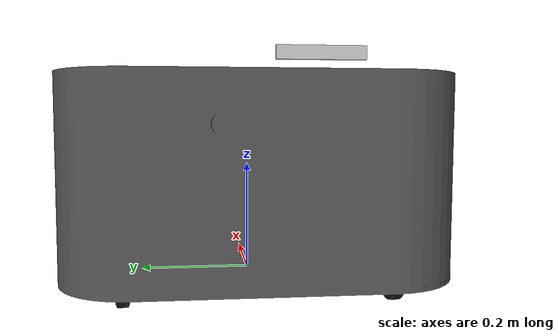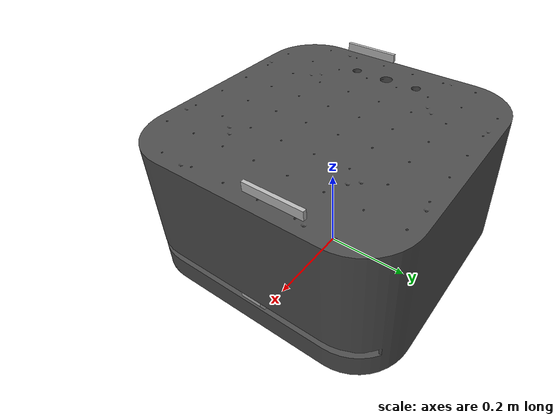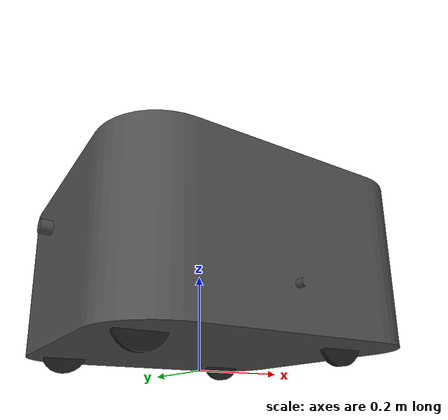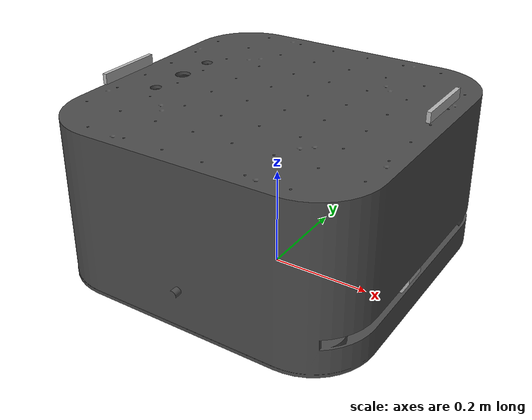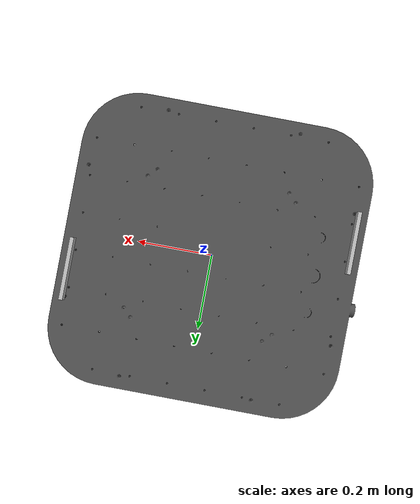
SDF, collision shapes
<?xml version='1.0'?>
<sdf version='1.6'>
  <model name="omniveyor_robot">
    <!-- For debug purpose Only: When configuring the robot structure,
         setting static to true such that the robot is ignored by the physics engine.
      -->

    <!-- Robot base_link -->
    <link name='base_link'>
      <pose>0 0 0 0 0 0</pose>
      <inertial>
        <pose>0 0 0.192 0 0 0</pose>
        <mass>29.82</mass>
        <inertia>
            <ixx>1.209698</ixx>
            <ixy>0</ixy>
            <ixz>0</ixz>
            <iyy>1.209698</iyy>
            <iyz>0</iyz>
            <izz>1.910468</izz>
        </inertia>
      </inertial>
      <collision name='collision'>
        <geometry>
          <mesh>
            <uri>OV_Shell.STL</uri>
            <scale>0.001 0.001 0.001</scale>
          </mesh>
        </geometry>
        <pose>-0.3752 0.3381 0.032 1.5708 -0 0</pose>
      </collision>
      <visual name='visual_mesh'>
        <geometry>
          <mesh>
            <uri>OV_Shell.STL</uri>
            <scale>0.001 0.001 0.001</scale>
          </mesh>
        </geometry>
        <pose>-0.3752 0.3381 0.032 1.5708 -0 0</pose>
        <material>
          <ambient>0.1 0.1 0.1 1</ambient>
          <diffuse>0.3 0.3 0.3 1</diffuse>
          <specular>0 0 0 0</specular>
          <emissive>0 0 0 1</emissive>
        </material>
      </visual>
    </link>

    <!-- Powered Casters -->
    <link name="FL_wheel">
      <pose>0.1874 0.2074 0.05 0 1.5707 1.5707</pose>
      <collision name="collision">
        <geometry>
          <cylinder>
            <radius>0.05</radius>
            <length>0.015</length>
          </cylinder>
        </geometry>
        <surface>
          <friction>
            <ode>
              <mu>0.9</mu>
              <mu2>0.9</mu2>
              <slip1>0.0001</slip1>
              <slip2>0.0001</slip2>
            </ode>
          </friction>
        </surface>
      </collision>
      <visual name="visual">
        <geometry>
          <cylinder>
            <radius>0.05</radius>
            <length>0.015</length>
          </cylinder>
        </geometry>
        <material>
          <ambient>0.1 0.1 0.1 1</ambient>
          <diffuse>0.1 0.1 0.1 1</diffuse>
          <specular>0 0 0 0</specular>
          <emissive>0 0 0 1</emissive>
        </material>
      </visual>
    </link>
    <link name="FL_poweredCaster">
      <pose>0.2074 0.2074 0.15 0 0 0</pose>
      <inertial>
        <mass>7.92</mass>
        <inertia>
            <ixx>0.0332</ixx>
            <ixy>0</ixy>
            <ixz>0</ixz>
            <iyy>0.0332</iyy>
            <iyz>0</iyz>
            <izz>0.02532</izz>
        </inertia>
      </inertial>
      <collision name="collision_p">
        <geometry>
          <cylinder>
            <radius>0.025</radius>
            <length>0.22</length>
          </cylinder>
        </geometry>
      </collision>
      <collision name="collision_f">
        <pose>-0.01 0 -0.1 0 1.5707 0</pose>
        <geometry>
          <cylinder>
            <radius>0.01</radius>
            <length>0.02</length>
          </cylinder>
        </geometry>
      </collision>
      <visual name="visual_p">
        <geometry>
          <cylinder>
            <radius>0.025</radius>
            <length>0.22</length>
          </cylinder>
        </geometry>
      </visual>
      <visual name="visual_f">
        <pose>-0.01 0 -0.1 0 1.5707 0</pose>
        <geometry>
          <cylinder>
            <radius>0.01</radius>
            <length>0.02</length>
          </cylinder>
        </geometry>
      </visual>
    </link>

    <link name="FR_wheel">
      <pose>0.1874 -0.2074 0.05 0 1.5707 1.5707</pose>
      <collision name="collision">
        <geometry>
          <cylinder>
            <radius>0.05</radius>
            <length>0.015</length>
          </cylinder>
        </geometry>
        <surface>
          <friction>
            <mu>0.9</mu>
            <mu2>0.9</mu2>
            <slip1>0.0001</slip1>
            <slip2>0.0001</slip2>
          </friction>
        </surface>
      </collision>
      <visual name="visual">
        <geometry>
          <cylinder>
            <radius>0.05</radius>
            <length>0.015</length>
          </cylinder>
        </geometry>
        <material>
          <ambient>0.1 0.1 0.1 1</ambient>
          <diffuse>0.1 0.1 0.1 1</diffuse>
          <specular>0 0 0 0</specular>
          <emissive>0 0 0 1</emissive>
        </material>
      </visual>
    </link>
    <link name="FR_poweredCaster">
      <pose>0.2074 -0.2074 0.15 0 0 0</pose>
      <inertial>
        <mass>7.92</mass>
        <inertia>
            <ixx>0.0332</ixx>
            <ixy>0</ixy>
            <ixz>0</ixz>
            <iyy>0.0332</iyy>
            <iyz>0</iyz>
            <izz>0.02532</izz>
        </inertia>
      </inertial>
      <collision name="collision_p">
        <geometry>
          <cylinder>
            <radius>0.025</radius>
            <length>0.22</length>
          </cylinder>
        </geometry>
      </collision>
      <collision name="collision_f">
        <pose>-0.01 0 -0.1 0 1.5707 0</pose>
        <geometry>
          <cylinder>
            <radius>0.01</radius>
            <length>0.02</length>
          </cylinder>
        </geometry>
      </collision>
      <visual name="visual_p">
        <geometry>
          <cylinder>
            <radius>0.025</radius>
            <length>0.22</length>
          </cylinder>
        </geometry>
      </visual>
      <visual name="visual_f">
        <pose>-0.01 0 -0.1 0 1.5707 0</pose>
        <geometry>
          <cylinder>
            <radius>0.01</radius>
            <length>0.02</length>
          </cylinder>
        </geometry>
      </visual>
    </link>

    <link name="RL_wheel">
      <pose>-0.2274 0.2074 0.05 0 1.5707 1.5707</pose>
      <collision name="collision">
        <geometry>
          <cylinder>
            <radius>0.05</radius>
            <length>0.015</length>
          </cylinder>
        </geometry>
        <surface>
          <friction>
            <ode>
              <mu>0.9</mu>
              <mu2>0.9</mu2>
              <slip1>0.0001</slip1>
              <slip2>0.0001</slip2>
            </ode>
          </friction>
        </surface>
      </collision>
      <visual name="visual">
        <geometry>
          <cylinder>
            <radius>0.05</radius>
            <length>0.015</length>
          </cylinder>
        </geometry>
        <material>
          <ambient>0.1 0.1 0.1 1</ambient>
          <diffuse>0.1 0.1 0.1 1</diffuse>
          <specular>0 0 0 0</specular>
          <emissive>0 0 0 1</emissive>
        </material>
      </visual>
    </link>
    <link name="RL_poweredCaster">
      <pose>-0.2074 0.2074 0.15 0 0 0</pose>
      <inertial>
        <mass>7.92</mass>
        <inertia>
            <ixx>0.0332</ixx>
            <ixy>0</ixy>
            <ixz>0</ixz>
            <iyy>0.0332</iyy>
            <iyz>0</iyz>
            <izz>0.02532</izz>
        </inertia>
      </inertial>
      <collision name="collision_p">
        <geometry>
          <cylinder>
            <radius>0.025</radius>
            <length>0.22</length>
          </cylinder>
        </geometry>
      </collision>
      <collision name="collision_f">
        <pose>-0.01 0 -0.1 0 1.5707 0</pose>
        <geometry>
          <cylinder>
            <radius>0.01</radius>
            <length>0.02</length>
          </cylinder>
        </geometry>
      </collision>
      <visual name="visual_p">
        <geometry>
          <cylinder>
            <radius>0.025</radius>
            <length>0.22</length>
          </cylinder>
        </geometry>
      </visual>
      <visual name="visual_f">
        <pose>-0.01 0 -0.1 0 1.5707 0</pose>
        <geometry>
          <cylinder>
            <radius>0.01</radius>
            <length>0.02</length>
          </cylinder>
        </geometry>
      </visual>
    </link>

    <link name="RR_wheel">
      <pose>-0.2274 -0.2074 0.05 0 1.5707 1.5707</pose>
      <collision name="collision">
        <geometry>
          <cylinder>
            <radius>0.05</radius>
            <length>0.015</length>
          </cylinder>
        </geometry>
        <surface>
          <friction>
            <ode>
              <mu>0.9</mu>
              <mu2>0.9</mu2>
              <slip1>0.0001</slip1>
              <slip2>0.0001</slip2>
            </ode>
          </friction>
        </surface>
      </collision>
      <visual name="visual">
        <geometry>
          <cylinder>
            <radius>0.05</radius>
            <length>0.015</length>
          </cylinder>
        </geometry>
        <material>
          <ambient>0.1 0.1 0.1 1</ambient>
          <diffuse>0.1 0.1 0.1 1</diffuse>
          <specular>0 0 0 0</specular>
          <emissive>0 0 0 1</emissive>
        </material>
      </visual>
    </link>
    <link name="RR_poweredCaster">
      <pose>-0.2074 -0.2074 0.15 0 0 0</pose>
      <inertial>
        <mass>7.92</mass>
        <inertia>
            <ixx>0.0332</ixx>
            <ixy>0</ixy>
            <ixz>0</ixz>
            <iyy>0.0332</iyy>
            <iyz>0</iyz>
            <izz>0.02532</izz>
        </inertia>
      </inertial>
      <collision name="collision_p">
        <geometry>
          <cylinder>
            <radius>0.025</radius>
            <length>0.22</length>
          </cylinder>
        </geometry>
      </collision>
      <collision name="collision_f">
        <pose>-0.01 0 -0.1 0 1.5707 0</pose>
        <geometry>
          <cylinder>
            <radius>0.01</radius>
            <length>0.02</length>
          </cylinder>
        </geometry>
      </collision>
      <visual name="visual_p">
        <geometry>
          <cylinder>
            <radius>0.025</radius>
            <length>0.22</length>
          </cylinder>
        </geometry>
      </visual>
      <visual name="visual_f">
        <pose>-0.01 0 -0.1 0 1.5707 0</pose>
        <geometry>
          <cylinder>
            <radius>0.01</radius>
            <length>0.02</length>
          </cylinder>
        </geometry>
      </visual>
    </link>

    <link name="hokuyo">
      <pose>0.27 0 0.08 0 0 0</pose>
      <inertial>
        <mass>0.1</mass>
        <inertia>
          <ixx>0.01</ixx>
          <ixy>0</ixy>
          <ixz>0</ixz>
          <iyy>0.01</iyy>
          <iyz>0</iyz>
          <izz>0.01</izz>
        </inertia>
      </inertial>
      <visual name="visual">
        <geometry>
          <mesh>
            <uri>model://hokuyo/meshes/hokuyo.dae</uri>
          </mesh>
        </geometry>
      </visual>
      <collision name="collision-base">
        <pose>0 0 -0.0145 0 0 0</pose>
        <geometry>
          <box>
            <size>0.05 0.05 0.041</size>
          </box>
        </geometry>
      </collision>
      <collision name="collision-top">
        <pose>0 0 0.0205 0 0 0</pose>
        <geometry>
          <cylinder>
            <radius>0.021</radius>
            <length>0.029</length>
          </cylinder>
        </geometry>
      </collision>
      <sensor name="laser" type="gpu_ray">
        <pose>0.01 0 0.0175 0 -0 0</pose>
        <ray>
          <scan>
            <horizontal>
              <samples>720</samples>
              <resolution>1</resolution>
              <min_angle>-1.57</min_angle>
              <max_angle>1.57</max_angle>
            </horizontal>
          </scan>
          <range>
            <min>0.05</min>
            <max>20</max>
            <resolution>0.01</resolution>
          </range>
        </ray>
        <noise>
          <type>gaussian</type>
          <mean>0.0</mean>
          <stddev>0.005</stddev>
        </noise>
        <plugin name="gazebo_ros_head_hokuyo_controller" filename="libgazebo_ros_gpu_laser.so">
          <topicName>/scan</topicName>
          <frameName>laser</frameName>
        </plugin>
        <always_on>1</always_on>
        <update_rate>40</update_rate>
        <visualize>true</visualize>
      </sensor>
    </link>

    <link name="cam_d1_link">
      <pose>0.285 0.08 0.376 0 0 0</pose>
      <inertial>
        <mass>0.2</mass>
        <inertia>
          <ixx>0.014395</ixx>
          <ixy>0</ixy>
          <ixz>0</ixz>
          <iyy>0.00384</iyy>
          <iyz>0</iyz>
          <izz>0.014136</izz>
        </inertia>
      </inertial>
      <collision name="collision">
        <geometry>
          <box>
            <size>0.008 0.13 0.02</size>
          </box>
        </geometry>
      </collision>
      <visual name="visual">
        <geometry>
          <mesh>
            <uri>model://intel_realsense_r200/meshes/realsense_r200.dae</uri>
          </mesh>
        </geometry>
      </visual>
      <sensor name="imu_sensor" type="imu">
        <gravity>true</gravity>
        <always_on>true</always_on>
        <update_rate>100</update_rate>
        <visualize>true</visualize>
        <plugin filename="libgazebo_ros_imu_sensor.so" name="imu_plugin">
          <topicName>/cam_d1/imu</topicName>
          <bodyName>cam_d1_link</bodyName>
          <updateRateHZ>0.0</updateRateHZ>
          <gaussianNoise>0.002</gaussianNoise>
          <xyzOffset>0 0 0</xyzOffset>
          <rpyOffset>0 0 0</rpyOffset>
          <frameName>cam_d1_link</frameName>
          <initialOrientationAsReference>false</initialOrientationAsReference>
        </plugin>
        <pose>0 0 0 0 0 0</pose>
      </sensor>
      <sensor name="camera" type="depth">
        <pose> 0 0 0 0 0 0 </pose>
        <visualize>true</visualize>
        <update_rate>15</update_rate>
        <camera>
          <horizontal_fov>1.204</horizontal_fov>
          <image>
            <width>1280</width>
            <height>720</height>
            <format>R8G8B8</format>
          </image>
          <noise>
            <type>gaussian</type>
            <mean>0.0</mean>
            <stddev>0.007</stddev>
          </noise>
        </camera>
        <plugin name="camera_plugin" filename="libgazebo_ros_openni_kinect.so">
          <baseline>0.2</baseline>
          <alwaysOn>true</alwaysOn>
          <updateRate>0.0</updateRate>
          <cameraName>cam_d1</cameraName>
          <imageTopicName>/cam_d1/color/image_raw</imageTopicName>
          <cameraInfoTopicName>/cam_d1/color/camera_info</cameraInfoTopicName>
          <depthImageTopicName>/cam_d1/depth/image_raw</depthImageTopicName>
          <depthImageCameraInfoTopicName>/cam_d1/depth/camera_info</depthImageCameraInfoTopicName>
          <pointCloudTopicName>/cam_d1/depth/color/points</pointCloudTopicName>
          <frameName>cam_d1_depth_link</frameName>
          <pointCloudCutoff>0.3</pointCloudCutoff>
          <pointCloudCutoffMax>6.0</pointCloudCutoffMax>
          <distortionK1>0</distortionK1>
          <distortionK2>0</distortionK2>
          <distortionK3>0</distortionK3>
          <distortionT1>0</distortionT1>
          <distortionT2>0</distortionT2>
          <CxPrime>0</CxPrime>
          <Cx>0</Cx>
          <Cy>0</Cy>
          <focalLength>0</focalLength>
          <hackBaseline>0</hackBaseline>
        </plugin>
      </sensor>
    </link>

    <link name="cam_d2_link">
      <pose>-0.285 -0.08 0.376 0 0 3.14159</pose>
      <inertial>
        <mass>0.2</mass>
        <inertia>
          <ixx>0.014395</ixx>
          <ixy>0</ixy>
          <ixz>0</ixz>
          <iyy>0.00384</iyy>
          <iyz>0</iyz>
          <izz>0.014136</izz>
        </inertia>
      </inertial>
      <collision name="collision">
        <geometry>
          <box>
            <size>0.008 0.13 0.02</size>
          </box>
        </geometry>
      </collision>
      <visual name="visual">
        <geometry>
          <mesh>
            <uri>model://intel_realsense_r200/meshes/realsense_r200.dae</uri>
          </mesh>
        </geometry>
      </visual>
      <sensor name="imu_sensor" type="imu">
        <always_on>true</always_on>
        <update_rate>100</update_rate>
        <visualize>true</visualize>
        <gravity>true</gravity>
        <plugin filename="libgazebo_ros_imu_sensor.so" name="imu_plugin">
          <topicName>/cam_d2/imu</topicName>
          <bodyName>cam_d2_link</bodyName>
          <updateRateHZ>0.0</updateRateHZ>
          <gaussianNoise>0.002</gaussianNoise>
          <xyzOffset>0 0 0</xyzOffset>
          <rpyOffset>0 0 0</rpyOffset>
          <frameName>cam_d2_link</frameName>
          <initialOrientationAsReference>false</initialOrientationAsReference>
        </plugin>
        <pose>0 0 0 0 0 0</pose>
      </sensor>
      <sensor name="camera" type="depth">
        <pose> 0 0 0 0 0 0 </pose>
        <visualize>true</visualize>
        <update_rate>15</update_rate>
        <camera>
          <horizontal_fov>1.204</horizontal_fov>
          <image>
            <width>1280</width>
            <height>720</height>
            <format>R8G8B8</format>
          </image>
          <noise>
            <type>gaussian</type>
            <mean>0.0</mean>
            <stddev>0.007</stddev>
          </noise>
        </camera>
        <plugin name="camera_plugin" filename="libgazebo_ros_openni_kinect.so">
          <baseline>0.2</baseline>
          <alwaysOn>true</alwaysOn>
          <updateRate>0.0</updateRate>
          <cameraName>cam_d2</cameraName>
          <imageTopicName>/cam_d2/color/image_raw</imageTopicName>
          <cameraInfoTopicName>/cam_d2/color/camera_info</cameraInfoTopicName>
          <depthImageTopicName>/cam_d2/depth/image_raw</depthImageTopicName>
          <depthImageCameraInfoTopicName>/cam_d2/depth/camera_info</depthImageCameraInfoTopicName>
          <pointCloudTopicName>/cam_d2/depth/color/points</pointCloudTopicName>
          <frameName>cam_d2_depth_link</frameName>
          <pointCloudCutoff>0.3</pointCloudCutoff>
          <pointCloudCutoffMax>6.0</pointCloudCutoffMax>
          <distortionK1>0</distortionK1>
          <distortionK2>0</distortionK2>
          <distortionK3>0</distortionK3>
          <distortionT1>0</distortionT1>
          <distortionT2>0</distortionT2>
          <CxPrime>0</CxPrime>
          <Cx>0</Cx>
          <Cy>0</Cy>
          <focalLength>0</focalLength>
          <hackBaseline>0</hackBaseline>
        </plugin>
      </sensor>
    </link>

    <!-- Powerd Caster steering joints -->
    <!-- sdf 1.7: Joints are expressed in CHILD frame by default -->
    <!-- WARNING sdf 1.4: Joints are expressed in WORLD frame by default -->
    <joint type="revolute" name="FL_steer">
      <parent>base_link</parent>
      <child>FL_poweredCaster</child>
      <pose>0 0 0.032 0 0 0</pose>
      <axis>
        <xyz>0 0 1</xyz>
      </axis>
    </joint>
    <!-- Wheel revolute joints -->
    <joint type="revolute" name="FL_wheel_axle">
      <parent>FL_poweredCaster</parent>
      <child>FL_wheel</child>
      <pose>0 0 0 0 0 0</pose>
      <axis>
        <xyz>0 0 1</xyz>
      </axis>
    </joint>

    <joint type="revolute" name="FR_steer">
      <parent>base_link</parent>
      <child>FR_poweredCaster</child>
      <pose>0 0 0.032 0 0 0</pose>
      <axis>
        <xyz>0 0 1</xyz>
      </axis>
    </joint>
    <joint type="revolute" name="FR_wheel_axle">
      <parent>FR_poweredCaster</parent>
      <child>FR_wheel</child>
      <pose>0 0 0 0 0 0</pose>
      <axis>
        <xyz>0 0 1</xyz>
      </axis>
    </joint>

    <joint type="revolute" name="RL_steer">
      <parent>base_link</parent>
      <child>RL_poweredCaster</child>
      <pose>0 0 0.032 0 0 0</pose>
      <axis>
        <xyz>0 0 1</xyz>
      </axis>
    </joint>
    <joint type="revolute" name="RL_wheel_axle">
      <parent>RL_poweredCaster</parent>
      <child>RL_wheel</child>
      <pose>-0 0 0 0 0 0</pose>
      <axis>
        <xyz>0 0 1</xyz>
      </axis>
    </joint>

    <joint type="revolute" name="RR_steer">
      <parent>base_link</parent>
      <child>RR_poweredCaster</child>
      <pose>0 0 0.032 0 0 0</pose>
      <axis>
        <xyz>0 0 1</xyz>
      </axis>
    </joint>
    <joint type="revolute" name="RR_wheel_axle">
      <parent>RR_poweredCaster</parent>
      <child>RR_wheel</child>
      <pose>-0 0 0 0 0 0</pose>
      <axis>
        <xyz>0 0 1</xyz>
      </axis>
    </joint>

    <joint name="hokuyo_joint" type="fixed">
      <child>hokuyo</child>
      <parent>base_link</parent>
    </joint>

    <joint name="front_rs_joint" type="fixed">
      <child>cam_d1_link</child>
      <parent>base_link</parent>
    </joint>

    <joint name="rear_rs_joint" type="fixed">
      <child>cam_d2_link</child>
      <parent>base_link</parent>
    </joint>

    <plugin filename="libOmniVeyorPlugin_ROS.so" name="omniveyor_simulator"/>
  </model>
</sdf>
